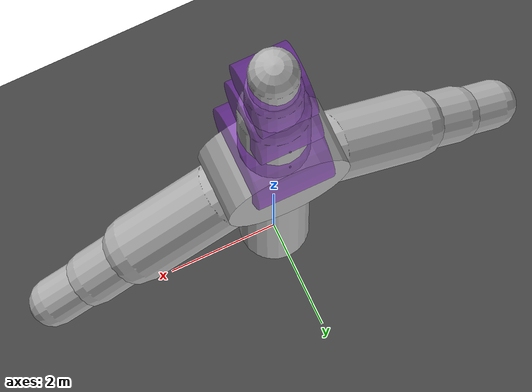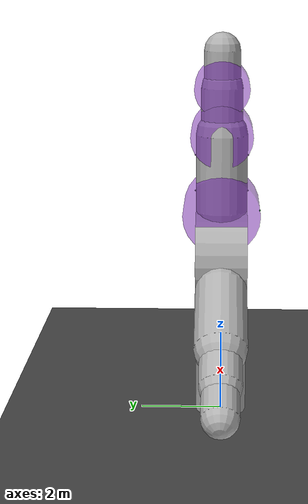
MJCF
<!-- MuJoCo Code for a static hand model with 3 fingers, each with 3 phalanges, all connected with hinge joints. This was designed for visual purposes only and used in a presentation. -->

<mujoco model="equilateral_base_hinge_joint_hand">
  <option timestep="0.005" iterations="50" solver="Newton" tolerance="1e-10"/>

  <visual>
    <rgba haze=".3 .3 .3 1"/>
  </visual>

  <default>
    <joint type="hinge" pos="0 0 0" axis="0 0 1" limited="true" range="0 120" damping="0.1"/>
    <muscle ctrllimited="true" ctrlrange="0 1"/>
  </default>

  <asset>
    <texture type="skybox" builtin="gradient" rgb1="0.6 0.6 0.6" rgb2="0 0 0" width="512" height="512"/>

    <texture name="texplane" type="2d" builtin="checker" rgb1=".25 .25 .25" rgb2=".3 .3 .3" width="512" height="512" mark="cross" markrgb=".8 .8 .8"/>

    <material name="matplane" reflectance="0.3" texture="texplane" texrepeat="1 1" texuniform="true"/>
  </asset>

  <worldbody>
    <geom name="floor" pos="0 0 0" size="0 0 1" type="plane" material="matplane"/>

    <light directional="true" diffuse=".8 .8 .8" specular=".2 .2 .2" pos="0 0 5" dir="0 0 -1"/>

    <site name="1s0" pos="0 0 4.65" size="0.02"/>
    <site name="1x0" pos="0 -0.9375 5.15" size="0.02" rgba="0 .7 0 1" group="1"/>

    <body pos="0 0 0">
      <!-- Define the arm where the hand is attached to -->
      <geom name="upper arm" type="capsule" size="0.625" fromto="0 0 0  0 0 4" rgba=".7 .7 .7 1"/>

        <body pos="0 0 4">
          <geom name="palm" type="cylinder" pos="0 0 0" size="1.15 0.625" rgba=".7 .7 .7 1" euler="90 0 0" mass="0" group="1"/>
        </body>

        <body pos="0 0 5.15">
          <geom name="proximal_phalanx_1" type="capsule" size="0.625" fromto="0 0 0  0 0 1.875" rgba=".7 .7 .7 1"/>
          <joint name="metacarpophalangeal_joint_1"/>
          <geom name="metacarpophalangeal_joint_1" type="cylinder" pos="0 0 0" size="0.9375 .7" rgba=".5 .1 .8 .5" mass="0" group="1" euler="0 90 0"/>
        </body>

        <body pos="0 0 7.025">
          <geom name="intermediate_phalanx_1" type="capsule" size="0.5" fromto="0 0 0  0 0 1.125" rgba=".7 .7 .7 1"/>
          <joint name="proximal_interphalangeal_joint_1"/>
          <geom name="proximal_interphalangeal_joint_1" type="cylinder" pos="0 0 0" size="0.75 .56" rgba=".5 .1 .8 .5" mass="0" group="1" euler="0 90 0"/>
        </body>

        <body pos="0 0 8.15">
          <geom name="distal_phalanx_1" type="capsule" size="0.4375" fromto="0 0 0  0 0 0.875" rgba=".7 .7 .7 1"/>
          <joint name="distal_interphalangeal_joint_1"/>
          <geom name="distal_interphalangeal_joint_1" type="cylinder" pos="0 0 0" size="0.66 .5" rgba=".5 .1 .8 .5" mass="0" group="1" euler="0 90 0"/>
        </body>

        <site name="1s1" pos="0 0.635 5.65" size="0.02"/>
        <site name="1s2" pos="0 -0.635 5.65" size="0.02"/>
        <site name="1s3" pos="0 0.635 6.525" size="0.02"/>
        <site name="1s4" pos="0 -0.635 6.525" size="0.02"/>

        <body pos="1 0 3.42">
          <geom name="proximal_phalanx_2" type="capsule" size="0.625" fromto="0 0 0  1.624 0 -0.9375" rgba=".7 .7 .7 1" euler="90 0 0"/>
        </body>

        <body pos="2.624 0 2.4825">
          <geom name="intermediate_phalanx_2" type="capsule" size="0.5" fromto="0 0 0  0.866 0 -0.5625" rgba=".7 .7 .7 1" euler="0 0 120"/>
        </body>

        <body pos="3.49 0 1.92">
          <geom name="distal_phalanx_2" type="capsule" size="0.4375" fromto="0 0 0  0.757 0 -0.4375" rgba=".7 .7 .7 1" euler="90 0 0"/>
        </body>

        <body pos="-1 0 3.42">
          <geom name="proximal_phalanx_3" type="capsule" size="0.625" fromto="0 0 0  -1.624 0 -0.9375" rgba=".7 .7 .7 1" euler="90 0 0"/>
        </body>

        <body pos="-2.624 0 2.4825">
          <geom name="intermediate_phalanx_3" type="capsule" size="0.5" fromto="0 0 0  -0.866 0 -0.5625" rgba=".7 .7 .7 1" euler="0 0 120"/>
        </body>

        <body pos="-3.49 0 1.92">
          <geom name="distal_phalanx_3" type="capsule" size="0.4375" fromto="0 0 0  -0.757 0 -0.4375" rgba=".7 .7 .7 1" euler="90 0 0"/>
        </body>

    </body>
  </worldbody>
</mujoco>
